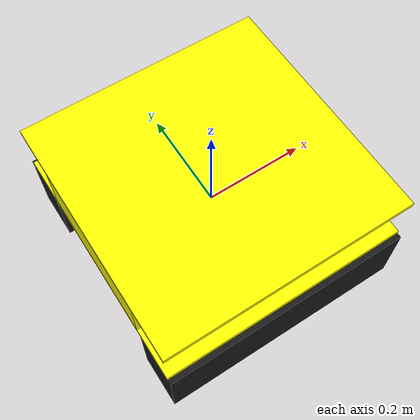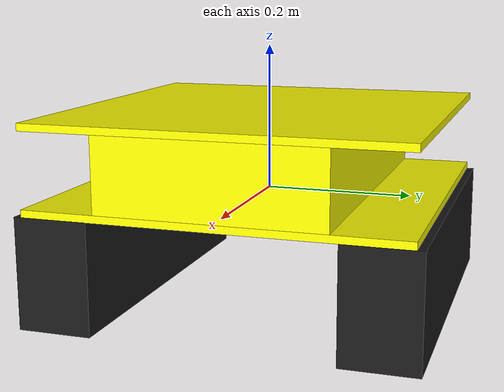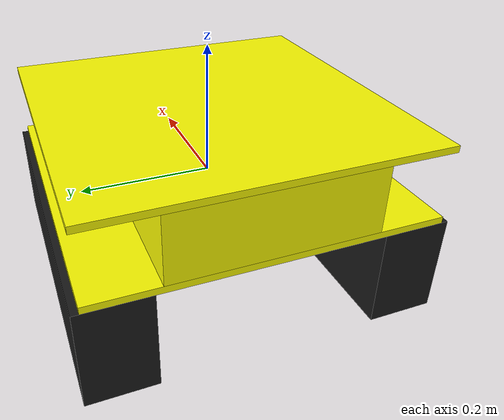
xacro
<?xml version="1.0"?>
<robot xmlns:xacro="http://ros.org/wiki/xacro" name="my_robot">

  <xacro:property name="platform_length" value="0.5"/>
  <xacro:property name="platform_width" value="0.5"/>
  <xacro:property name="platform_thickness" value="0.01"/>
  <xacro:property name="body_length" value="0.5"/>
  <xacro:property name="body_width" value="0.3"/>
  <xacro:property name="body_height" value="0.1"/>

  <xacro:property name="track_length" value="0.5"/>
  <xacro:property name="track_width" value="0.1"/>
  <xacro:property name="track_height" value="0.15"/>

  <link name="base_link">
  </link>

  <link name="bottom_plate">
    <visual>
      <geometry>
        <box size="${platform_length} ${platform_width} ${platform_thickness}"/>
      </geometry>
      <origin xyz="0 0 0" rpy="0 0 0"/>
      <material name="yellow">
        <color rgba="1.0 1.0 0.0 1.0"/>
      </material>
    </visual>
  </link>

  <joint name="base_to_bottom" type="fixed">
    <parent link="base_link"/>
    <child link="bottom_plate"/>
    <origin xyz="0 0 0" rpy="0 0 0"/>
  </joint>

  <link name="main_body">
    <visual>
      <geometry>
        <box size="${body_length} ${body_width} ${body_height}"/>
      </geometry>
      <origin xyz="0 0 0" rpy="0 0 0"/>
      <material name="yellow"/>
    </visual>
  </link>

  <joint name="bottom_to_body" type="fixed">
    <parent link="bottom_plate"/>
    <child link="main_body"/>
    <origin xyz="0 0 ${platform_thickness/2 + body_height/2}" rpy="0 0 0"/>
  </joint>

  <link name="top_plate">
    <visual>
      <geometry>
        <box size="${platform_length} ${platform_width} ${platform_thickness}"/>
      </geometry>
      <origin xyz="0 0 0" rpy="0 0 0"/>
      <material name="yellow"/>
    </visual>
  </link>

  <joint name="body_to_top" type="fixed">
    <parent link="main_body"/>
    <child link="top_plate"/>
    <origin xyz="0 0 ${body_height/2 + platform_thickness/2}" rpy="0 0 0"/>
  </joint>

  <link name="left_track">
    <visual>
      <geometry>
        <box size="${track_length} ${track_width} ${track_height}"/>
      </geometry>
      <origin xyz="0 0 0" rpy="0 0 0"/>
      <material name="black">
        <color rgba="0.1 0.1 0.1 1.0"/>
      </material>
    </visual>
  </link>

  <joint name="base_to_left_track" type="fixed">
    <parent link="base_link"/>
    <child link="left_track"/>
    <origin xyz="0 ${platform_width/2 + 0.01 - track_width/2} ${-platform_thickness/2 - track_height/2}" rpy="0 0 0"/>
  </joint>

  <link name="right_track">
    <visual>
      <geometry>
        <box size="${track_length} ${track_width} ${track_height}"/>
      </geometry>
      <origin xyz="0 0 0" rpy="0 0 0"/>
      <material name="black"/>
    </visual>
  </link>

  <joint name="base_to_right_track" type="fixed">
    <parent link="base_link"/>
    <child link="right_track"/>
    <origin xyz="0 ${-(platform_width/2 + 0.01 - track_width/2)} ${-platform_thickness/2 - track_height/2}" rpy="0 0 0"/>
  </joint>

</robot>
